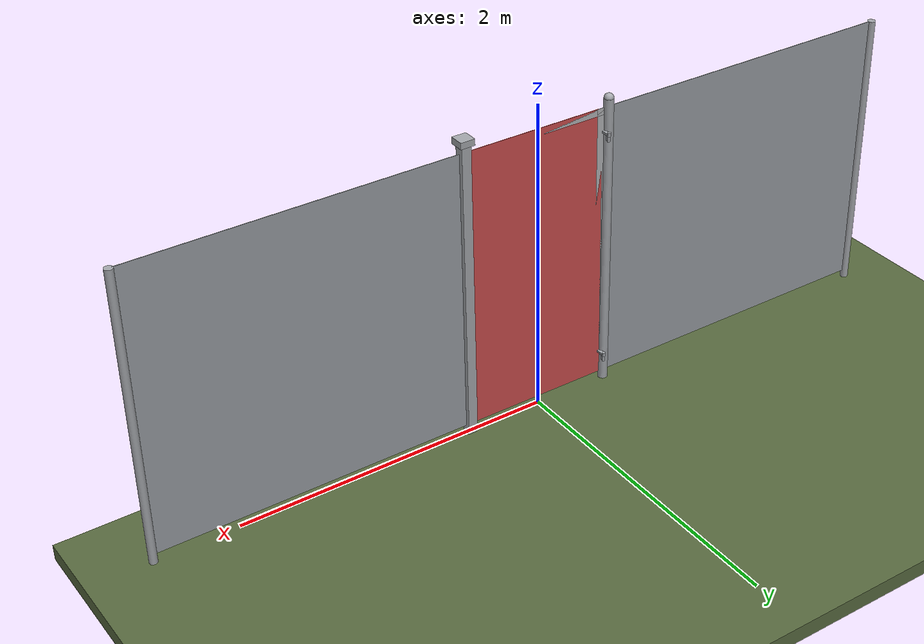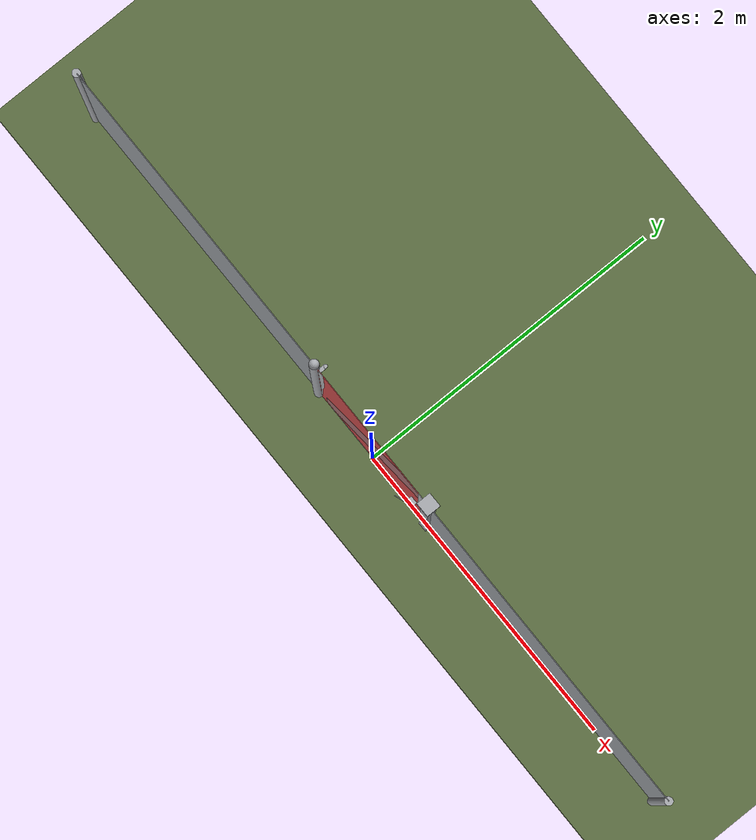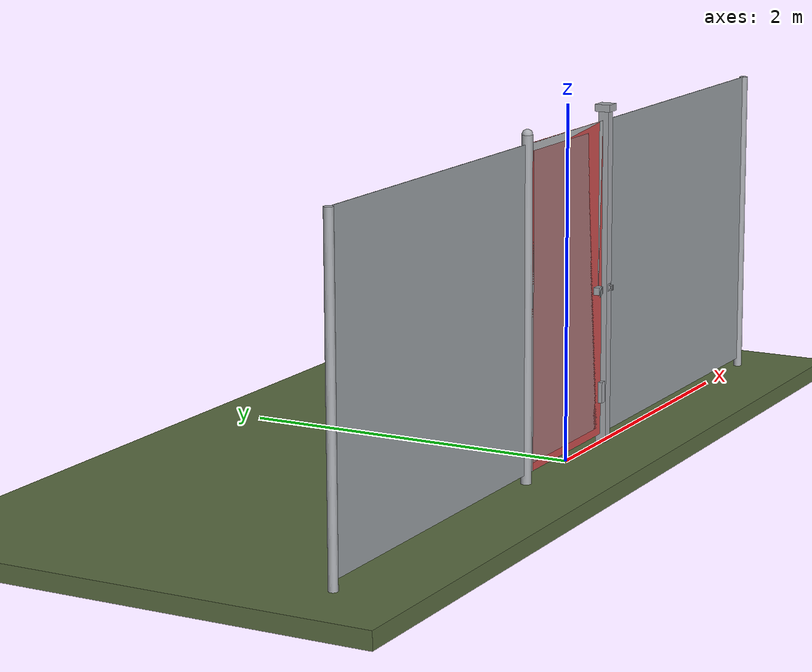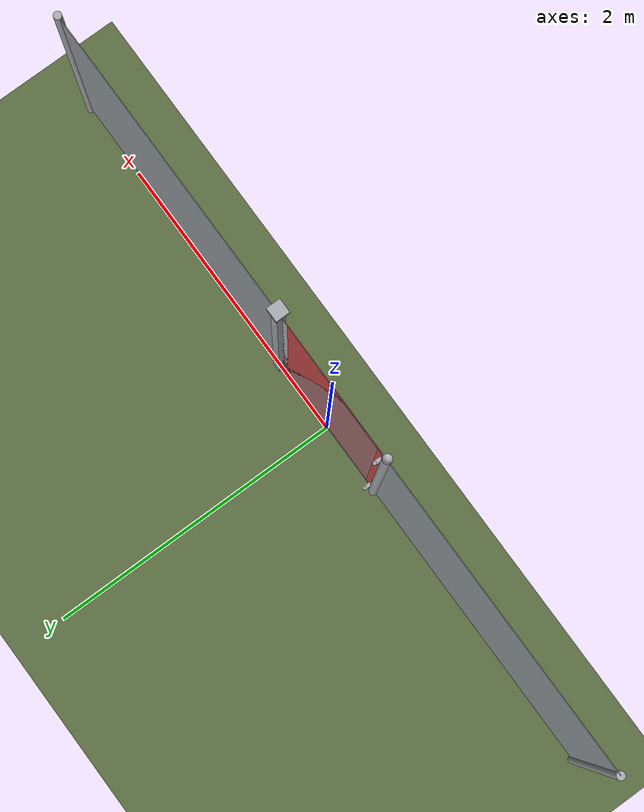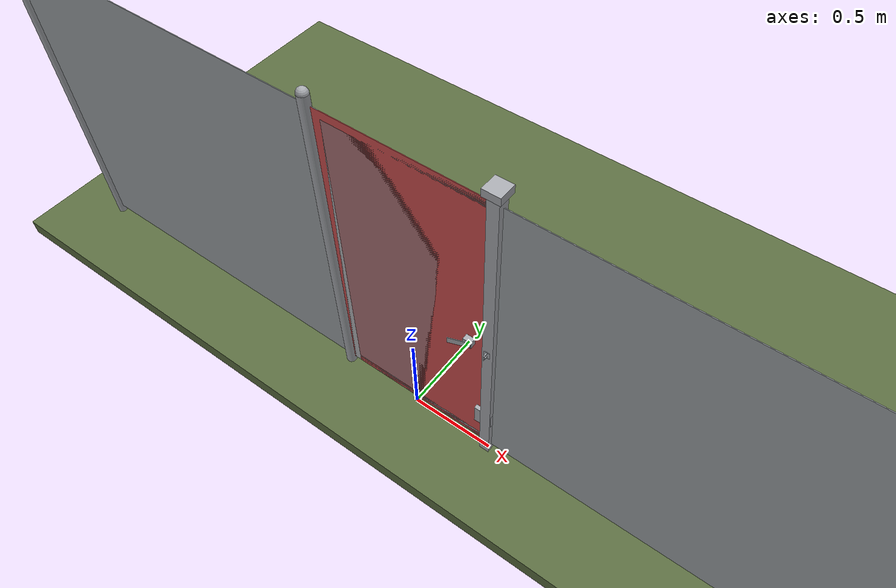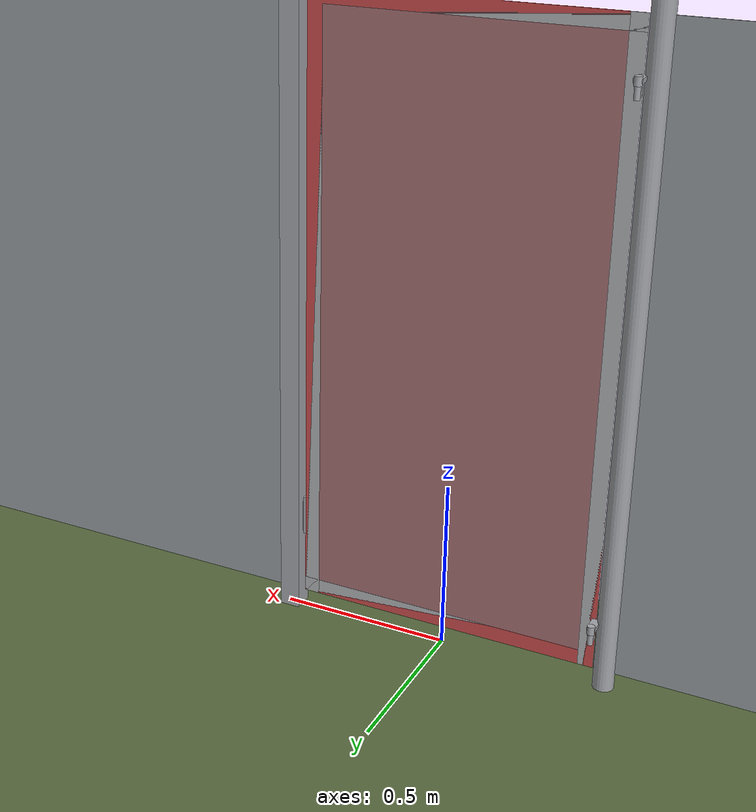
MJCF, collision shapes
<?xml version="1.0" ?>
<mujoco model="db0301_gate_swing_full">
  <compiler angle="radian" meshdir="../../hardware" texturedir="../../textures" autolimits="true" inertiafromgeom="false"/>
  <option timestep="0.002" integrator="implicitfast" cone="elliptic" impratio="10" noslip_iterations="3">
    <flag multiccd="enable"/>
  </option>
  <size memory="16M"/>
  <default>
    <geom condim="4" solref="0.005 1" solimp="0.95 0.99 0.001"/>
    <joint solreflimit="0.005 1" solimplimit="0.95 0.99 0.001"/>
    <tendon solreflimit="0.005 1"/>
    <equality solref="0.002 1"/>
  </default>
  <visual>
    <headlight ambient="0.4 0.4 0.4" diffuse="0.7 0.7 0.7" specular="0.2 0.2 0.2"/>
    <quality shadowsize="4096"/>
    <map znear="0.01" zfar="60"/>
  </visual>
  <asset>
    <mesh name="strap_hinge_3c1a7c1a5f" file="strap_hinge_3c1a7c1a5f.obj"/>
    <material name="mat_floor" rgba="0.35 0.42 0.25 1" specular="0.2" shininess="0.15" reflectance="0"/>
    <material name="mat_wall" rgba="0.78 0.76 0.7 1" specular="0.2" shininess="0.1" reflectance="0"/>
    <material name="mat_leaf" rgba="0.7 0.71 0.72 1" specular="0.74" shininess="0.5" reflectance="0.36"/>
    <material name="mat_mesh_infill" rgba="0.6 0.62 0.64 0.55" specular="0.68" shininess="0.3" reflectance="0.1"/>
    <material name="mat_hinge" rgba="0.65 0.66 0.68 1" specular="0.74" shininess="0.5" reflectance="0.36"/>
    <material name="mat_op_steel_galvanized" rgba="0.65 0.66 0.68 1" specular="0.74" shininess="0.5" reflectance="0.36"/>
    <material name="mat_padlock" rgba="0.85 0.66 0.3 1" specular="0.8" shininess="0.75" reflectance="0.4"/>
    <material name="mat_frame" rgba="0.65 0.66 0.68 1" specular="0.74" shininess="0.5" reflectance="0.36"/>
    <material name="mat_fence_mesh" rgba="0.6 0.62 0.64 0.5" specular="0.68" shininess="0.3" reflectance="0.1"/>
    <texture name="skybox" type="skybox" builtin="gradient" rgb1="0.6 0.7 0.85" rgb2="0.9 0.92 0.95" width="256" height="256"/>
  </asset>
  <worldbody>
    <light name="sun" pos="1.5 -2.5 4" dir="-0.3 0.5 -0.8" directional="true" diffuse="0.8 0.8 0.8" specular="0.3 0.3 0.3" castshadow="true"/>
    <light name="fill" pos="-1.5 2.5 3" dir="0.3 -0.5 -0.7" directional="true" diffuse="0.35 0.35 0.4" castshadow="false"/>
    <camera name="robot_view" pos="0 -2.33125 1.56275" xyaxes="1 0 0 0 0.26963 0.962964" fovy="52"/>
    <camera name="far_view" pos="0 2.33125 1.56275" xyaxes="-1 0 0 0 -0.26963 0.962964" fovy="52"/>
    <camera name="iso" pos="1.77175 -1.95825 1.93575" xyaxes="0.741536 0.670913 0 -0.242917 0.268487 0.932151" fovy="46"/>
    <camera name="detail_handle" pos="0.666 -0.844 1.18" xyaxes="0.97561 0.219512 0 -0.070934 0.315262 0.94635" fovy="38"/>
    <geom name="floor" type="box" size="6 6 0.05" pos="0 0 -0.05" material="mat_floor" group="0" contype="1" conaffinity="1" friction="0.8 0.005 0.0001" density="2400"/>
    <geom name="hinge_pintle_0" type="cylinder" size="0.008 0.02" pos="-0.453 0.05 0.174" material="mat_hinge" group="1" contype="0" conaffinity="0" density="7850"/>
    <geom name="hinge_pintle_1" type="cylinder" size="0.008 0.02" pos="-0.453 0.05 1.674" material="mat_hinge" group="1" contype="0" conaffinity="0" density="7850"/>
    <geom name="leaf_staple_leg_n" type="box" size="0.003 0.0025 0.013" pos="0.484 -0.043 0.8875" quat="0.707107 0.707107 0 0" material="mat_op_steel_galvanized" group="0" contype="1" conaffinity="1" friction="0.6 0.005 0.0001" density="7800"/>
    <geom name="leaf_staple_leg_p" type="box" size="0.003 0.0025 0.013" pos="0.484 -0.043 0.9125" quat="0.707107 0.707107 0 0" material="mat_op_steel_galvanized" group="0" contype="1" conaffinity="1" friction="0.6 0.005 0.0001" density="7800"/>
    <geom name="leaf_staple_bridge" type="box" size="0.003 0.015 0.0025" pos="0.484 -0.0535 0.9" quat="0.707107 0.707107 0 0" material="mat_op_steel_galvanized" group="0" contype="1" conaffinity="1" friction="0.6 0.005 0.0001" density="7800"/>
    <geom name="leaf_staple_base" type="box" size="0.016 0.021 0.001" pos="0.484 -0.031 0.9" quat="0.707107 0.707107 0 0" material="mat_op_steel_galvanized" group="1" contype="0" conaffinity="0" density="7800"/>
    <geom name="post_hinge" type="cylinder" size="0.03 0.95" pos="-0.486 0 0.95" material="mat_frame" group="0" contype="1" conaffinity="1" friction="0.6 0.005 0.0001" density="800"/>
    <geom name="post_hinge_cap" type="sphere" size="0.03" pos="-0.486 0 1.9" material="mat_frame" group="1" contype="0" conaffinity="0" density="800"/>
    <geom name="post_latch" type="box" size="0.03 0.03 0.95" pos="0.486 0 0.95" material="mat_frame" group="0" contype="1" conaffinity="1" friction="0.6 0.005 0.0001" density="800"/>
    <geom name="post_latch_cap" type="box" size="0.045 0.045 0.02" pos="0.486 0 1.92" material="mat_frame" group="1" contype="0" conaffinity="0" density="800"/>
    <geom name="gate_stop" type="box" size="0.02 0.012 0.06" pos="0.436 -0.0135 0.3" material="mat_frame" group="0" contype="1" conaffinity="1" friction="0.6 0.005 0.0001" density="800"/>
    <geom name="fence_l" type="box" size="1 0.002 0.9" pos="-1.516 0 0.95" material="mat_fence_mesh" group="0" contype="1" conaffinity="1" friction="0.6 0.005 0.0001" density="100"/>
    <geom name="fence_post_l" type="cylinder" size="0.025 0.925" pos="-2.516 0 0.925" material="mat_frame" group="0" contype="1" conaffinity="1" friction="0.6 0.005 0.0001" density="7850"/>
    <geom name="fence_r" type="box" size="1 0.002 0.9" pos="1.516 0 0.95" material="mat_fence_mesh" group="0" contype="1" conaffinity="1" friction="0.6 0.005 0.0001" density="100"/>
    <geom name="fence_post_r" type="cylinder" size="0.025 0.925" pos="2.516 0 0.925" material="mat_frame" group="0" contype="1" conaffinity="1" friction="0.6 0.005 0.0001" density="7850"/>
    <geom name="hinge_pintle_0_strap_0" type="box" size="0.0064 0.0065 0.016" pos="-0.453 0.036 0.174" material="mat_hinge" group="1" contype="0" conaffinity="0" density="7850"/>
    <geom name="hinge_pintle_1_strap_0" type="box" size="0.0064 0.0065 0.016" pos="-0.453 0.036 1.674" material="mat_hinge" group="1" contype="0" conaffinity="0" density="7850"/>
    <geom name="gate_stop_strap_0" type="box" size="0.0305 0.01255 0.048" pos="0.486 -0.01055 0.3" material="mat_frame" group="1" contype="0" conaffinity="0" density="7850"/>
    <site name="approach_point" pos="0 -1.5 0" quat="1 0 0 0" size="0.05" rgba="0.2 0.9 0.2 0.5" group="4"/>
    <site name="goal_point" pos="0 1.5 0" quat="1 0 0 0" size="0.05" rgba="0.2 0.9 0.2 0.5" group="4"/>
    <site name="door_plane_center" pos="0 0 0.91" quat="1 0 0 0" size="0.02" rgba="0.2 0.9 0.2 0.5" group="4"/>
    <body name="leaf" pos="-0.456 0 0">
      <inertial pos="0.397547 0.001479 0.945298" mass="5.15026" quat="0.502776 0.492445 -0.507364 0.497288" diaginertia="0.486710856 1.592465391 2.078033155"/>
      <joint name="leaf_hinge" type="hinge" axis="0 0 1" pos="0.003 0.05 0" limited="true" range="0 1.745329" damping="0.263285" frictionloss="2.570028" armature="0.02"/>
      <geom name="leaf_slab_col" type="box" size="0.45 0.0015 0.9" pos="0.453 0 0.95" material="mat_leaf" group="3" contype="1" conaffinity="1" rgba="0.8 0.3 0.3 0.25" friction="0.45 0.005 0.0001" density="1"/>
      <geom name="leaf_rail_b" type="box" size="0.45 0.0015 0.0225" pos="0.453 0 0.0725" material="mat_leaf" group="1" contype="0" conaffinity="0" density="1"/>
      <geom name="leaf_rail_t" type="box" size="0.45 0.0015 0.0225" pos="0.453 0 1.8275" material="mat_leaf" group="1" contype="0" conaffinity="0" density="1"/>
      <geom name="leaf_stile_h" type="box" size="0.0225 0.0015 0.9" pos="0.0255 0 0.95" material="mat_leaf" group="1" contype="0" conaffinity="0" density="1"/>
      <geom name="leaf_stile_l" type="box" size="0.0225 0.0015 0.9" pos="0.8805 0 0.95" material="mat_leaf" group="1" contype="0" conaffinity="0" density="1"/>
      <geom name="leaf_mesh" type="box" size="0.405 0.0015 0.855" pos="0.453 0 0.95" material="mat_mesh_infill" group="1" contype="0" conaffinity="0" density="1"/>
      <geom name="hinge_strap_0" type="mesh" mesh="strap_hinge_3c1a7c1a5f" pos="0.003 0.0045 0.2" material="mat_hinge" group="1" contype="0" conaffinity="0" density="7850"/>
      <geom name="hinge_strap_eye_0" type="cylinder" size="0.011 0.012" pos="0.003 0.05 0.2" material="mat_hinge" group="1" contype="0" conaffinity="0" density="7850"/>
      <geom name="hinge_strap_neck_0" type="box" size="0.012 0.02675 0.006" pos="0.003 0.02725 0.2" material="mat_hinge" group="1" contype="0" conaffinity="0" density="7850"/>
      <geom name="hinge_strap_1" type="mesh" mesh="strap_hinge_3c1a7c1a5f" pos="0.003 0.0045 1.7" material="mat_hinge" group="1" contype="0" conaffinity="0" density="7850"/>
      <geom name="hinge_strap_eye_1" type="cylinder" size="0.011 0.012" pos="0.003 0.05 1.7" material="mat_hinge" group="1" contype="0" conaffinity="0" density="7850"/>
      <geom name="hinge_strap_neck_1" type="box" size="0.012 0.02675 0.006" pos="0.003 0.02725 1.7" material="mat_hinge" group="1" contype="0" conaffinity="0" density="7850"/>
      <geom name="leaf_hasp_plate" type="box" size="0.024 0.0215 0.01625" pos="0.828 -0.01775 0.9" quat="0.707107 0.707107 0 0" material="mat_op_steel_galvanized" group="1" contype="0" conaffinity="0" density="7800"/>
      <site name="leaf_edge_mid" pos="0.903 0 0.9" quat="1 0 0 0" size="0.02" rgba="0.2 0.9 0.2 0.5" group="4"/>
      <body name="leaf_hasp" pos="0.848 -0.034 0.9">
        <inertial pos="-0.044323 -0.01367 0" mass="0.11484" quat="0.695849 -0.695849 -0.125677 0.125677" diaginertia="0.000013089 0.000158235 0.000170826"/>
        <joint name="leaf_hasp_hinge" type="hinge" axis="0 0 -1" limited="true" range="0 2.9" damping="0.02" frictionloss="0.05" armature="0.005" ref="2.8"/>
        <geom name="leaf_hasp_strap" type="box" size="0.057 0.0175 0.0015" pos="-0.054209 -0.017681 0" quat="0.120185 0.120185 -0.696818 -0.696818" material="mat_op_steel_galvanized" group="0" contype="1" conaffinity="1" friction="0.6 0.005 0.0001" density="7800"/>
        <geom name="leaf_hasp_knuckle" type="cylinder" size="0.0045 0.0215" pos="-0.00134 0.003769 0" quat="0 0.169967 -0.98545 0" material="mat_op_steel_galvanized" group="1" contype="0" conaffinity="0" density="7850"/>
        <site name="leaf_hasp_grip" pos="-0.091919 -0.022067 0" quat="0.169967 0 0 -0.98545" size="0.01" rgba="0.2 0.9 0.2 0.5" group="4"/>
      </body>
    </body>
  </worldbody>
  <sensor>
    <jointpos name="leaf_hinge_pos" joint="leaf_hinge"/>
    <jointvel name="leaf_hinge_vel" joint="leaf_hinge"/>
    <jointpos name="leaf_hasp_hinge_pos" joint="leaf_hasp_hinge"/>
    <jointvel name="leaf_hasp_hinge_vel" joint="leaf_hasp_hinge"/>
  </sensor>
</mujoco>
